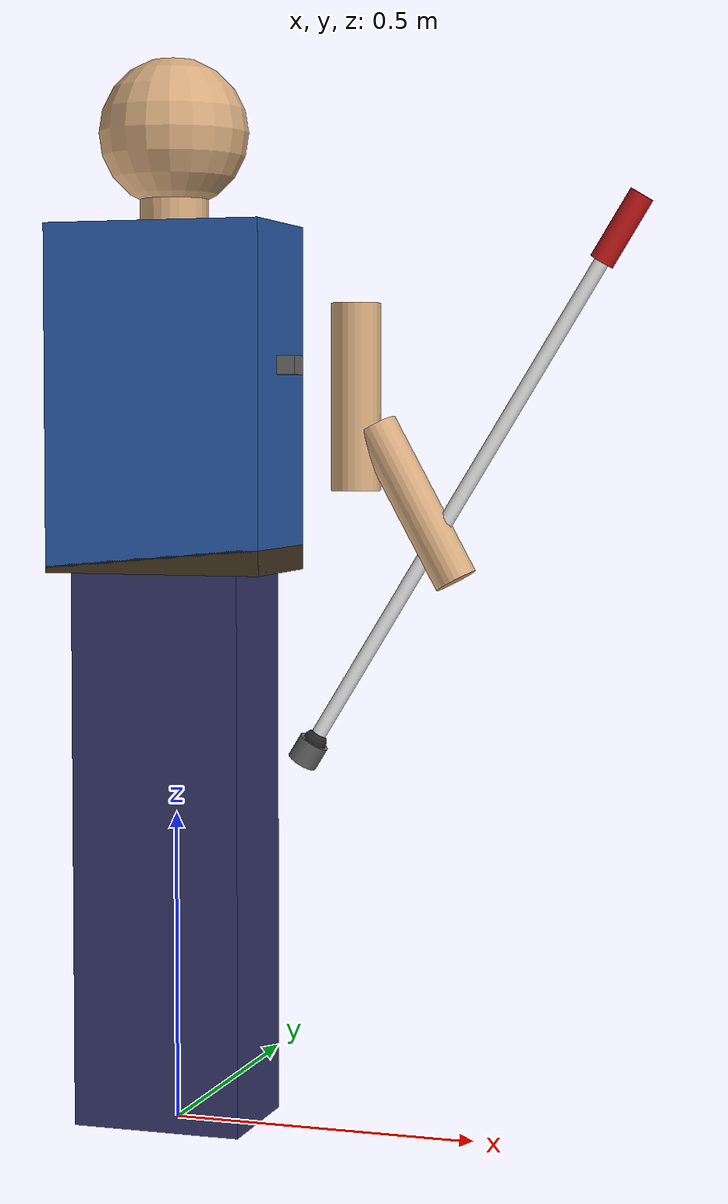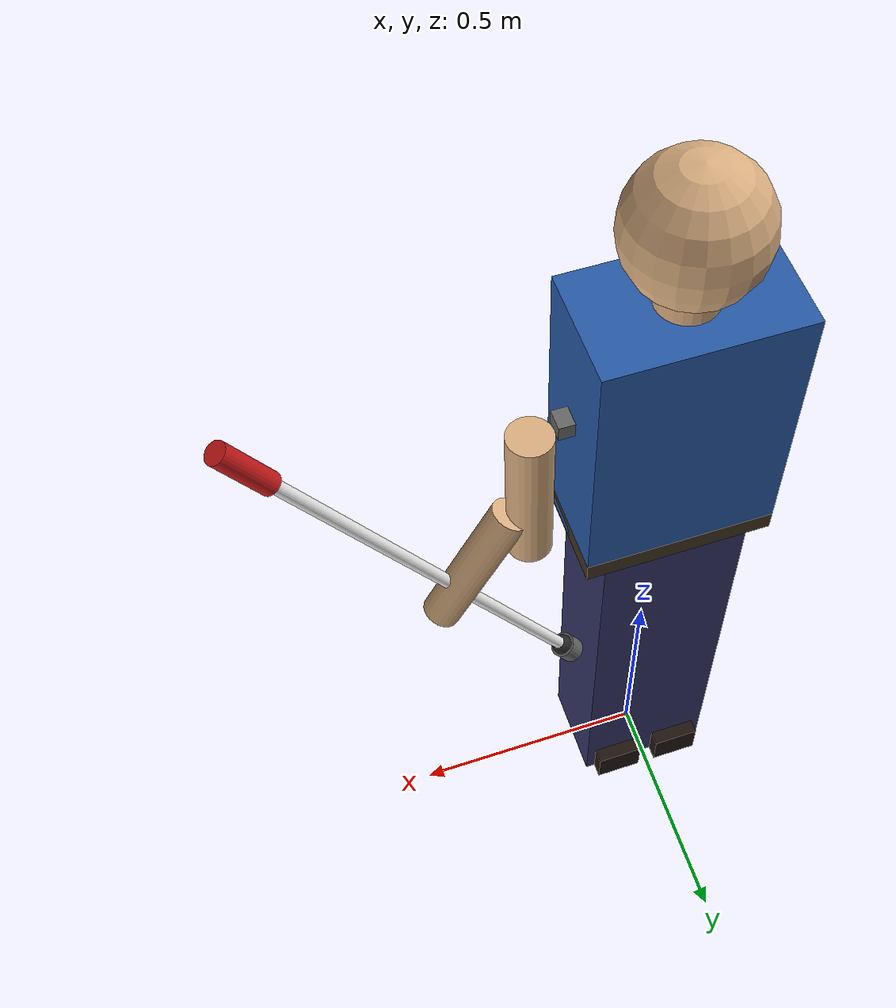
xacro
<?xml version="1.0"?>
<robot xmlns:xacro="http://www.ros.org/wiki/xacro" name="smartnav">

  <!-- ======================== INERTIA MACROS ======================== -->
  <xacro:macro name="box_inertia" params="m x y z">
    <inertial>
      <mass value="${m}"/>
      <inertia
        ixx="${m*(y*y+z*z)/12}" ixy="0" ixz="0"
        iyy="${m*(x*x+z*z)/12}" iyz="0"
        izz="${m*(x*x+y*y)/12}"/>
    </inertial>
  </xacro:macro>

  <xacro:macro name="cyl_inertia" params="m r h">
    <inertial>
      <mass value="${m}"/>
      <inertia
        ixx="${m*(3*r*r+h*h)/12}" ixy="0" ixz="0"
        iyy="${m*(3*r*r+h*h)/12}" iyz="0"
        izz="${m*r*r/2}"/>
    </inertial>
  </xacro:macro>

  <xacro:macro name="sphere_inertia" params="m r">
    <inertial>
      <mass value="${m}"/>
      <inertia
        ixx="${2*m*r*r/5}" ixy="0" ixz="0"
        iyy="${2*m*r*r/5}" iyz="0"
        izz="${2*m*r*r/5}"/>
    </inertial>
  </xacro:macro>

  <!-- ======================== MATERIALS ======================== -->
  <material name="skin_color">
    <color rgba="0.85 0.68 0.50 1.0"/>
  </material>
  <material name="pants_color">
    <color rgba="0.20 0.20 0.40 1.0"/>
  </material>
  <material name="shirt_color">
    <color rgba="0.15 0.35 0.65 1.0"/>
  </material>
  <material name="white_cane">
    <color rgba="0.95 0.95 0.95 1.0"/>
  </material>
  <material name="red_handle">
    <color rgba="0.80 0.10 0.10 1.0"/>
  </material>
  <material name="sensor_gray">
    <color rgba="0.40 0.40 0.40 1.0"/>
  </material>

  <!-- ======================== BASE LINK (lower body / legs) ======================== -->
  <!--
    This is the main physics link.
    Represents legs + lower torso as a capsule approximation.
    Height: 0.9m, width: 0.28m
    Base of legs at z=0, top of legs at z=0.9
  -->
  <link name="base_link">
    <!-- Legs (combined as one box) -->
    <visual>
      <origin xyz="0 0 0.45" rpy="0 0 0"/>
      <geometry>
        <box size="0.28 0.20 0.90"/>
      </geometry>
      <material name="pants_color"/>
    </visual>
    <!-- Left leg detail -->
    <visual>
      <origin xyz="0.07 0 0.45" rpy="0 0 0"/>
      <geometry>
        <box size="0.10 0.15 0.88"/>
      </geometry>
      <material name="pants_color"/>
    </visual>
    <!-- Right leg detail -->
    <visual>
      <origin xyz="-0.07 0 0.45" rpy="0 0 0"/>
      <geometry>
        <box size="0.10 0.15 0.88"/>
      </geometry>
      <material name="pants_color"/>
    </visual>
    <!-- Shoes -->
    <visual>
      <origin xyz="0.07 0.02 0.04" rpy="0 0 0"/>
      <geometry>
        <box size="0.10 0.22 0.08"/>
      </geometry>
      <material>
        <color rgba="0.12 0.08 0.06 1"/>
      </material>
    </visual>
    <visual>
      <origin xyz="-0.07 0.02 0.04" rpy="0 0 0"/>
      <geometry>
        <box size="0.10 0.22 0.08"/>
      </geometry>
      <material>
        <color rgba="0.12 0.08 0.06 1"/>
      </material>
    </visual>
    <!-- Collision: simplified capsule as box -->
    <collision>
      <origin xyz="0 0 0.45" rpy="0 0 0"/>
      <geometry>
        <box size="0.30 0.22 0.90"/>
      </geometry>
    </collision>
    <xacro:box_inertia m="35.0" x="0.30" y="0.22" z="0.90"/>
  </link>

  <!-- ======================== TORSO LINK ======================== -->
  <link name="torso_link">
    <!-- Shirt / torso body -->
    <visual>
      <origin xyz="0 0 0.0" rpy="0 0 0"/>
      <geometry>
        <box size="0.36 0.22 0.55"/>
      </geometry>
      <material name="shirt_color"/>
    </visual>
    <!-- Belt area -->
    <visual>
      <origin xyz="0 0 -0.26" rpy="0 0 0"/>
      <geometry>
        <box size="0.36 0.22 0.04"/>
      </geometry>
      <material>
        <color rgba="0.25 0.20 0.12 1"/>
      </material>
    </visual>
    <collision>
      <origin xyz="0 0 0.0" rpy="0 0 0"/>
      <geometry>
        <box size="0.36 0.22 0.55"/>
      </geometry>
    </collision>
    <xacro:box_inertia m="20.0" x="0.36" y="0.22" z="0.55"/>
  </link>

  <joint name="torso_joint" type="fixed">
    <parent link="base_link"/>
    <child link="torso_link"/>
    <origin xyz="0 0 1.175" rpy="0 0 0"/>
  </joint>

  <!-- ======================== HEAD LINK ======================== -->
  <link name="head_link">
    <!-- Head (sphere) -->
    <visual>
      <origin xyz="0 0 0" rpy="0 0 0"/>
      <geometry>
        <sphere radius="0.12"/>
      </geometry>
      <material name="skin_color"/>
    </visual>
    <!-- Neck -->
    <visual>
      <origin xyz="0 0 -0.10" rpy="0 0 0"/>
      <geometry>
        <cylinder radius="0.055" length="0.10"/>
      </geometry>
      <material name="skin_color"/>
    </visual>
    <collision>
      <geometry>
        <sphere radius="0.13"/>
      </geometry>
    </collision>
    <xacro:sphere_inertia m="5.0" r="0.13"/>
  </link>

  <joint name="head_joint" type="fixed">
    <parent link="torso_link"/>
    <child link="head_link"/>
    <origin xyz="0 0 0.42" rpy="0 0 0"/>
  </joint>

  <!-- ======================== ARM LINK (right arm, holds cane) ======================== -->
  <link name="arm_link">
    <visual>
      <origin xyz="0 0 -0.15" rpy="0 0 0"/>
      <geometry>
        <cylinder radius="0.04" length="0.30"/>
      </geometry>
      <material name="skin_color"/>
    </visual>
    <!-- Forearm -->
    <visual>
      <origin xyz="0.1 0 -0.32" rpy="0 -0.5 0"/>
      <geometry>
        <cylinder radius="0.035" length="0.28"/>
      </geometry>
      <material name="skin_color"/>
    </visual>
    <collision>
      <origin xyz="0 0 -0.15" rpy="0 0 0"/>
      <geometry>
        <cylinder radius="0.04" length="0.30"/>
      </geometry>
    </collision>
    <xacro:cyl_inertia m="2.5" r="0.04" h="0.30"/>
  </link>

  <joint name="arm_joint" type="fixed">
    <parent link="torso_link"/>
    <child link="arm_link"/>
    <!-- Right side of torso, slightly in front -->
    <origin xyz="0.28 0.08 0.15" rpy="0 0 0"/>
  </joint>

  <!-- ======================== CANE LINK ======================== -->
  <!--
    White cane:
    - 1.1m long, 0.015m radius
    - Held diagonally forward at ~30 degrees from vertical
    - Red handle at the top, white body, tip at bottom
  -->
  <link name="cane_link">
    <!-- White cane body -->
    <visual>
      <origin xyz="0 0 0" rpy="0 0 0"/>
      <geometry>
        <cylinder radius="0.012" length="1.0"/>
      </geometry>
      <material name="white_cane"/>
    </visual>
    <!-- Red handle at top -->
    <visual>
      <origin xyz="0 0 0.48" rpy="0 0 0"/>
      <geometry>
        <cylinder radius="0.020" length="0.12"/>
      </geometry>
      <material name="red_handle"/>
    </visual>
    <!-- Tip marker (dark) -->
    <visual>
      <origin xyz="0 0 -0.48" rpy="0 0 0"/>
      <geometry>
        <sphere radius="0.020"/>
      </geometry>
      <material>
        <color rgba="0.15 0.15 0.15 1"/>
      </material>
    </visual>
    <collision>
      <origin xyz="0 0 0" rpy="0 0 0"/>
      <geometry>
        <cylinder radius="0.015" length="1.0"/>
      </geometry>
    </collision>
    <xacro:cyl_inertia m="0.40" r="0.015" h="1.0"/>
  </link>

  <joint name="cane_joint" type="fixed">
    <parent link="arm_link"/>
    <child link="cane_link"/>
    <!-- Cane angle: 0.55 rad forward (~31 degrees from vertical) -->
    <origin xyz="0.18 0 -0.30" rpy="0 0.55 0"/>
  </joint>

  <!-- ======================== LIDAR SENSOR (cane tip) ======================== -->
  <!--
    Main sensor: placed at cane tip
    - Detects ground-level obstacles (poles, rocks, curbs, canes in front)
    - 360 deg horizontal scan
    - Range 0.1 to 3.0m
    - 20Hz update rate
  -->
  <link name="laser_link">
    <visual>
      <origin xyz="0 0 0" rpy="0 0 0"/>
      <geometry>
        <cylinder radius="0.025" length="0.04"/>
      </geometry>
      <material name="sensor_gray"/>
    </visual>
    <collision>
      <geometry>
        <cylinder radius="0.025" length="0.04"/>
      </geometry>
    </collision>
    <inertial>
      <mass value="0.08"/>
      <inertia ixx="0.0001" ixy="0" ixz="0" iyy="0.0001" iyz="0" izz="0.0001"/>
    </inertial>
  </link>

  <joint name="laser_joint" type="fixed">
    <parent link="cane_link"/>
    <child link="laser_link"/>
    <!-- At cane tip (bottom end of cane link) -->
    <origin xyz="0 0 -0.50" rpy="0 0 0"/>
  </joint>

  <!-- Gazebo sensor: main cane LiDAR -->
  <gazebo reference="laser_link">
    <sensor name="cane_lidar" type="gpu_lidar">
      <always_on>true</always_on>
      <update_rate>20.0</update_rate>
      <visualize>true</visualize>
      <topic>/scan</topic>
      <gz_frame_id>laser_link</gz_frame_id>
      <ray>
        <scan>
          <horizontal>
            <samples>360</samples>
            <resolution>1</resolution>
            <min_angle>-3.14159</min_angle>
            <max_angle>3.14159</max_angle>
          </horizontal>
        </scan>
        <range>
          <min>0.10</min>
          <max>3.0</max>
          <resolution>0.01</resolution>
        </range>
      </ray>
    </sensor>
  </gazebo>

  <!-- ======================== CHEST SENSOR (body height obstacles) ======================== -->
  <link name="chest_sensor_link">
    <visual>
      <origin xyz="0 0 0" rpy="0 0 0"/>
      <geometry>
        <box size="0.04 0.04 0.03"/>
      </geometry>
      <material name="sensor_gray"/>
    </visual>
    <collision>
      <geometry>
        <box size="0.04 0.04 0.03"/>
      </geometry>
    </collision>
    <inertial>
      <mass value="0.05"/>
      <inertia ixx="0.00001" ixy="0" ixz="0" iyy="0.00001" iyz="0" izz="0.00001"/>
    </inertial>
  </link>

  <joint name="chest_sensor_joint" type="fixed">
    <parent link="torso_link"/>
    <child link="chest_sensor_link"/>
    <!-- Front center of torso, at approximately chest height -->
    <origin xyz="0.19 0 0.05" rpy="0 0 0"/>
  </joint>

  <!-- Gazebo sensor: chest-level LiDAR -->
  <gazebo reference="chest_sensor_link">
    <sensor name="chest_lidar" type="gpu_lidar">
      <always_on>true</always_on>
      <update_rate>20.0</update_rate>
      <visualize>false</visualize>
      <topic>/scan_chest</topic>
      <gz_frame_id>chest_sensor_link</gz_frame_id>
      <ray>
        <scan>
          <horizontal>
            <samples>180</samples>
            <resolution>1</resolution>
            <!-- Forward-facing 180 degrees: from -90 to +90 degrees -->
            <min_angle>-1.5708</min_angle>
            <max_angle>1.5708</max_angle>
          </horizontal>
        </scan>
        <range>
          <min>0.10</min>
          <max>5.0</max>
          <resolution>0.01</resolution>
        </range>
      </ray>
    </sensor>
  </gazebo>

  <!-- ======================== GAZEBO VISUALS ======================== -->
  <gazebo reference="base_link">
    <material>
      <ambient>0.20 0.20 0.40 1</ambient>
      <diffuse>0.20 0.20 0.40 1</diffuse>
    </material>
  </gazebo>

  <gazebo reference="torso_link">
    <material>
      <ambient>0.15 0.35 0.65 1</ambient>
      <diffuse>0.15 0.35 0.65 1</diffuse>
    </material>
  </gazebo>

  <gazebo reference="head_link">
    <material>
      <ambient>0.85 0.68 0.50 1</ambient>
      <diffuse>0.85 0.68 0.50 1</diffuse>
    </material>
  </gazebo>

  <gazebo reference="cane_link">
    <material>
      <ambient>0.95 0.95 0.95 1</ambient>
      <diffuse>0.95 0.95 0.95 1</diffuse>
    </material>
  </gazebo>

  <!-- ======================== MOTION PLUGIN ======================== -->
  <!--
    VelocityControl allows cmd_vel to move the model directly.
    Compatible with Gazebo Harmonic (gz-sim8) and ROS2 Jazzy.
  -->
  <gazebo>
    <plugin
      filename="gz-sim-velocity-control-system"
      name="gz::sim::systems::VelocityControl">
      <topic>/cmd_vel</topic>
      <link_name>base_link</link_name>
    </plugin>
  </gazebo>

</robot>
